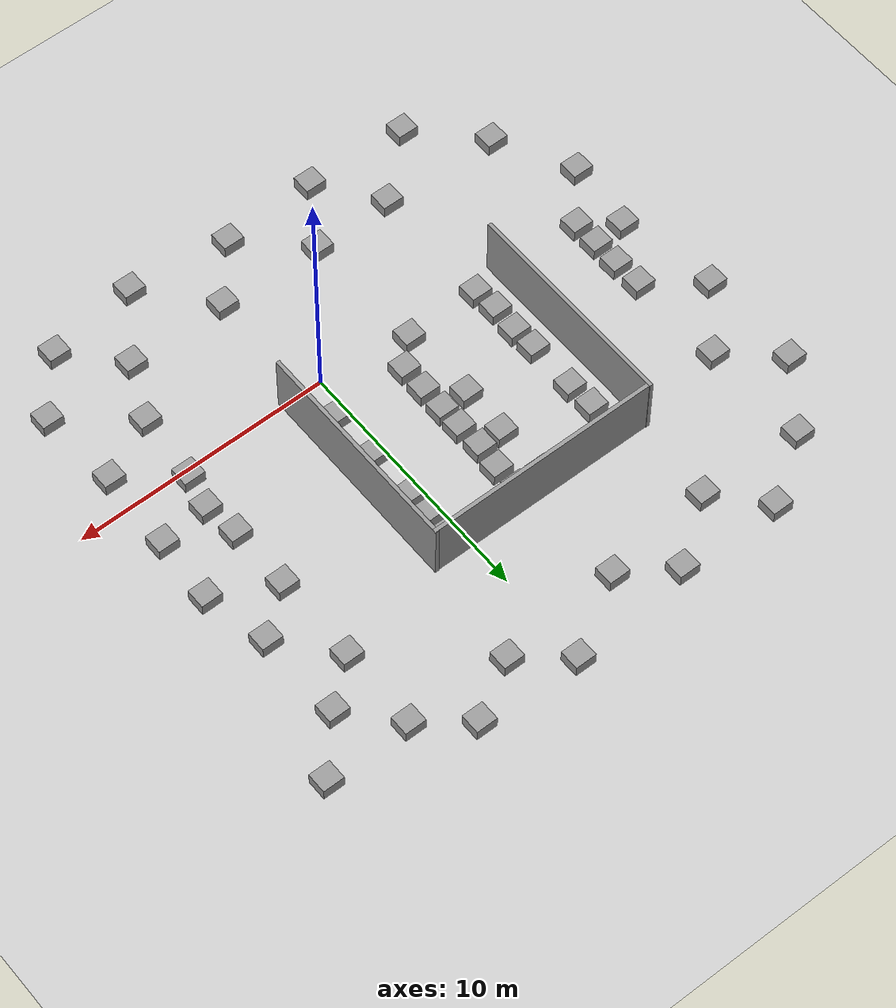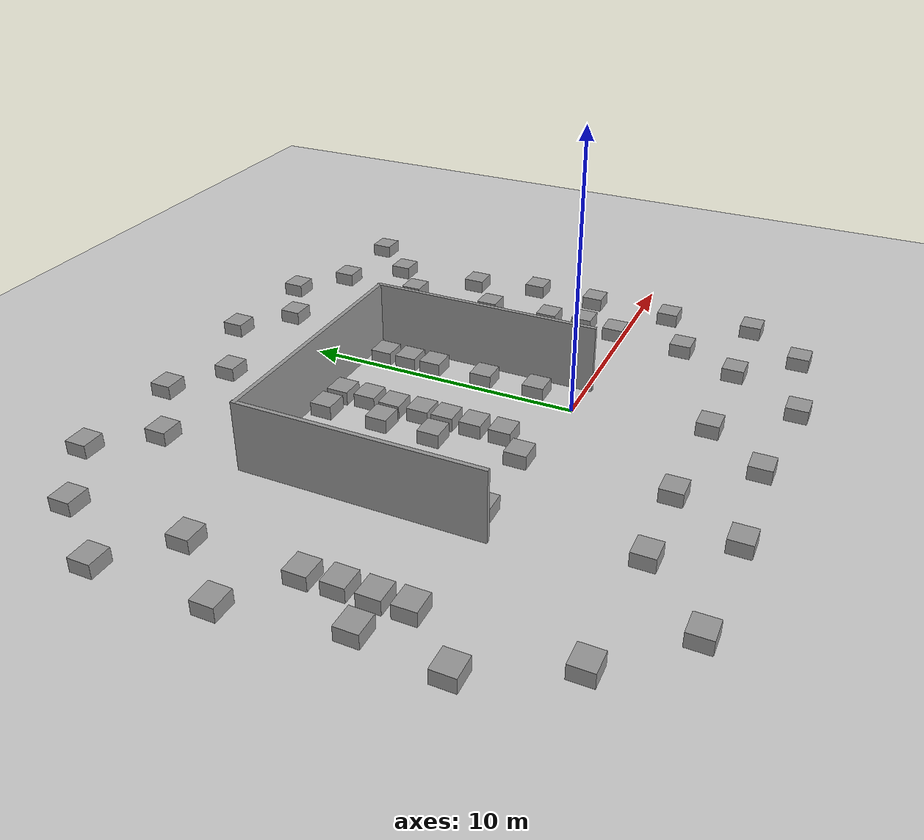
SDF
<sdf version="1.7">
 <world name="default">
  <light name="sun" type="directional">
   <pose>0 0 10 0 -0 0</pose>
   <diffuse>0.8 0.8 0.8 1</diffuse>
   <specular>0.2 0.2 0.2 1</specular>
   <attenuation>
    <range>1000</range>
    <constant>0.9</constant>
    <linear>0.01</linear>
    <quadratic>0.001</quadratic>
   </attenuation>
   <direction>-0.5 0.1 -0.9</direction>
   <spot><inner_angle>0</inner_angle><outer_angle>0</outer_angle><falloff>0</falloff></spot>
  </light>
  <model name="ground_plane">
   <static>1</static>
   <link name="link">
    <collision name="collision">
     <geometry><plane><normal>0 0 1</normal><size>100 100</size></plane></geometry>
     <surface>
      <contact><collide_bitmask>65535</collide_bitmask></contact>
      <friction><ode><mu>100</mu><mu2>50</mu2></ode></friction>
     </surface>
    </collision>
    <visual name="visual">
     <cast_shadows>0</cast_shadows>
     <geometry><plane><normal>0 0 1</normal><size>100 100</size></plane></geometry>
     <material>
      <script><uri>file://media/materials/scripts/gazebo.material</uri><name>Gazebo/Grey</name></script>
     </material>
    </visual>
   </link>
  </model>
  <gravity>0 0 -9.8</gravity>
  <magnetic_field>6e-06 2.3e-05 -4.2e-05</magnetic_field>
  <atmosphere type="adiabatic"/>
  <physics name="default_physics" default="0" type="ode">
   <max_step_size>0.001</max_step_size>
   <real_time_factor>1</real_time_factor>
   <real_time_update_rate>1000</real_time_update_rate>
  </physics>
  <scene><ambient>0.4 0.4 0.4 1</ambient><background>0.7 0.7 0.7 1</background><shadows>1</shadows></scene>
  <audio><device>default</device></audio>
  <spherical_coordinates>
   <surface_model>EARTH_WGS84</surface_model>
   <latitude_deg>0</latitude_deg>
   <longitude_deg>0</longitude_deg>
   <elevation>0</elevation>
   <heading_deg>0</heading_deg>
  </spherical_coordinates>
  <model name="unit_box_clone">
   <pose>0.5497 1.49077 0.249258 0 -0 1e-06</pose>
   <link name="link">
    <inertial>
     <mass>1</mass>
     <inertia>
      <ixx>0.166667</ixx>
      <ixy>0</ixy>
      <ixz>0</ixz>
      <iyy>0.166667</iyy>
      <iyz>0</iyz>
      <izz>0.166667</izz>
     </inertia>
    </inertial>
    <collision name="collision">
     <geometry><box><size>0.832462 0.776172 0.498517</size></box></geometry>
    </collision>
    <visual name="visual">
     <geometry><box><size>0.832462 0.776172 0.498517</size></box></geometry>
     <material>
      <script><name>Gazebo/Grey</name><uri>file://media/materials/scripts/gazebo.material</uri></script>
     </material>
    </visual>
   </link>
  </model>
  <model name="unit_box_clone_0">
   <pose>0.542038 3.47351 0.249258 0 -0 1e-06</pose>
   <link name="link">
    <inertial>
     <mass>1</mass>
     <inertia>
      <ixx>0.166667</ixx>
      <ixy>0</ixy>
      <ixz>0</ixz>
      <iyy>0.166667</iyy>
      <iyz>0</iyz>
      <izz>0.166667</izz>
     </inertia>
    </inertial>
    <collision name="collision">
     <geometry><box><size>0.832462 0.776172 0.498517</size></box></geometry>
    </collision>
    <visual name="visual">
     <geometry><box><size>0.832462 0.776172 0.498517</size></box></geometry>
     <material>
      <script><name>Gazebo/Grey</name><uri>file://media/materials/scripts/gazebo.material</uri></script>
     </material>
    </visual>
   </link>
  </model>
  <model name="unit_box_clone_1">
   <pose>0.55967 5.47509 0.249258 0 -0 1e-06</pose>
   <link name="link">
    <inertial>
     <mass>1</mass>
     <inertia>
      <ixx>0.166667</ixx>
      <ixy>0</ixy>
      <ixz>0</ixz>
      <iyy>0.166667</iyy>
      <iyz>0</iyz>
      <izz>0.166667</izz>
     </inertia>
    </inertial>
    <collision name="collision">
     <geometry><box><size>0.832462 0.776172 0.498517</size></box></geometry>
    </collision>
    <visual name="visual">
     <geometry><box><size>0.832462 0.776172 0.498517</size></box></geometry>
     <material>
      <script><name>Gazebo/Grey</name><uri>file://media/materials/scripts/gazebo.material</uri></script>
     </material>
    </visual>
   </link>
  </model>
  <model name="unit_box_clone_2">
   <pose>0.545616 7.45285 0.249258 0 -0 1e-06</pose>
   <link name="link">
    <inertial>
     <mass>1</mass>
     <inertia>
      <ixx>0.166667</ixx>
      <ixy>0</ixy>
      <ixz>0</ixz>
      <iyy>0.166667</iyy>
      <iyz>0</iyz>
      <izz>0.166667</izz>
     </inertia>
    </inertial>
    <collision name="collision">
     <geometry><box><size>0.832462 0.776172 0.498517</size></box></geometry>
    </collision>
    <visual name="visual">
     <geometry><box><size>0.832462 0.776172 0.498517</size></box></geometry>
     <material>
      <script><name>Gazebo/Grey</name><uri>file://media/materials/scripts/gazebo.material</uri></script>
     </material>
    </visual>
   </link>
  </model>
  <model name="unit_box_clone_3">
   <pose>0.543198 6.45342 0.249258 0 -0 1e-06</pose>
   <link name="link">
    <inertial>
     <mass>1</mass>
     <inertia>
      <ixx>0.166667</ixx>
      <ixy>0</ixy>
      <ixz>0</ixz>
      <iyy>0.166667</iyy>
      <iyz>0</iyz>
      <izz>0.166667</izz>
     </inertia>
    </inertial>
    <collision name="collision">
     <geometry><box><size>0.832462 0.776172 0.498517</size></box></geometry>
    </collision>
    <visual name="visual">
     <geometry><box><size>0.832462 0.776172 0.498517</size></box></geometry>
     <material>
      <script><name>Gazebo/Grey</name><uri>file://media/materials/scripts/gazebo.material</uri></script>
     </material>
    </visual>
   </link>
  </model>
  <model name="unit_box_clone_4">
   <pose>-2.47532 7.50096 0.249258 0 -0 1e-06</pose>
   <link name="link">
    <inertial>
     <mass>1</mass>
     <inertia>
      <ixx>0.166667</ixx>
      <ixy>0</ixy>
      <ixz>0</ixz>
      <iyy>0.166667</iyy>
      <iyz>0</iyz>
      <izz>0.166667</izz>
     </inertia>
    </inertial>
    <collision name="collision">
     <geometry><box><size>0.832462 0.776172 0.498517</size></box></geometry>
    </collision>
    <visual name="visual">
     <geometry><box><size>0.832462 0.776172 0.498517</size></box></geometry>
     <material>
      <script><name>Gazebo/Grey</name><uri>file://media/materials/scripts/gazebo.material</uri></script>
     </material>
    </visual>
   </link>
  </model>
  <model name="unit_box_clone_5">
   <pose>-2.52887 5.46662 0.249258 0 -0 1e-06</pose>
   <link name="link">
    <inertial>
     <mass>1</mass>
     <inertia>
      <ixx>0.166667</ixx>
      <ixy>0</ixy>
      <ixz>0</ixz>
      <iyy>0.166667</iyy>
      <iyz>0</iyz>
      <izz>0.166667</izz>
     </inertia>
    </inertial>
    <collision name="collision">
     <geometry><box><size>0.832462 0.776172 0.498517</size></box></geometry>
    </collision>
    <visual name="visual">
     <geometry><box><size>0.832462 0.776172 0.498517</size></box></geometry>
     <material>
      <script><name>Gazebo/Grey</name><uri>file://media/materials/scripts/gazebo.material</uri></script>
     </material>
    </visual>
   </link>
  </model>
  <model name="unit_box_clone_6">
   <pose>-2.4761 4.43201 0.249258 0 -0 1e-06</pose>
   <link name="link">
    <inertial>
     <mass>1</mass>
     <inertia>
      <ixx>0.166667</ixx>
      <ixy>0</ixy>
      <ixz>0</ixz>
      <iyy>0.166667</iyy>
      <iyz>0</iyz>
      <izz>0.166667</izz>
     </inertia>
    </inertial>
    <collision name="collision">
     <geometry><box><size>0.832462 0.776172 0.498517</size></box></geometry>
    </collision>
    <visual name="visual">
     <geometry><box><size>0.832462 0.776172 0.498517</size></box></geometry>
     <material>
      <script><name>Gazebo/Grey</name><uri>file://media/materials/scripts/gazebo.material</uri></script>
     </material>
    </visual>
   </link>
  </model>
  <model name="unit_box_clone_7">
   <pose>-2.47412 3.51977 0.249258 0 -0 1e-06</pose>
   <link name="link">
    <inertial>
     <mass>1</mass>
     <inertia>
      <ixx>0.166667</ixx>
      <ixy>0</ixy>
      <ixz>0</ixz>
      <iyy>0.166667</iyy>
      <iyz>0</iyz>
      <izz>0.166667</izz>
     </inertia>
    </inertial>
    <collision name="collision">
     <geometry><box><size>0.832462 0.776172 0.498517</size></box></geometry>
    </collision>
    <visual name="visual">
     <geometry><box><size>0.832462 0.776172 0.498517</size></box></geometry>
     <material>
      <script><name>Gazebo/Grey</name><uri>file://media/materials/scripts/gazebo.material</uri></script>
     </material>
    </visual>
   </link>
  </model>
  <model name="unit_box_clone_8">
   <pose>-2.50304 1.43642 0.249258 0 -0 1e-06</pose>
   <link name="link">
    <inertial>
     <mass>1</mass>
     <inertia>
      <ixx>0.166667</ixx>
      <ixy>0</ixy>
      <ixz>0</ixz>
      <iyy>0.166667</iyy>
      <iyz>0</iyz>
      <izz>0.166667</izz>
     </inertia>
    </inertial>
    <collision name="collision">
     <geometry><box><size>0.832462 0.776172 0.498517</size></box></geometry>
    </collision>
    <visual name="visual">
     <geometry><box><size>0.832462 0.776172 0.498517</size></box></geometry>
     <material>
      <script><name>Gazebo/Grey</name><uri>file://media/materials/scripts/gazebo.material</uri></script>
     </material>
    </visual>
   </link>
  </model>
  <model name="unit_box_clone_9">
   <pose>-2.48784 2.49434 0.249258 0 -0 1e-06</pose>
   <link name="link">
    <inertial>
     <mass>1</mass>
     <inertia>
      <ixx>0.166667</ixx>
      <ixy>0</ixy>
      <ixz>0</ixz>
      <iyy>0.166667</iyy>
      <iyz>0</iyz>
      <izz>0.166667</izz>
     </inertia>
    </inertial>
    <collision name="collision">
     <geometry><box><size>0.832462 0.776172 0.498517</size></box></geometry>
    </collision>
    <visual name="visual">
     <geometry><box><size>0.832462 0.776172 0.498517</size></box></geometry>
     <material>
      <script><name>Gazebo/Grey</name><uri>file://media/materials/scripts/gazebo.material</uri></script>
     </material>
    </visual>
   </link>
  </model>
  <model name="unit_box_clone_10">
   <pose>-3.45923 0.496209 0.249258 0 -0 1e-06</pose>
   <link name="link">
    <inertial>
     <mass>1</mass>
     <inertia>
      <ixx>0.166667</ixx>
      <ixy>0</ixy>
      <ixz>0</ixz>
      <iyy>0.166667</iyy>
      <iyz>0</iyz>
      <izz>0.166667</izz>
     </inertia>
    </inertial>
    <collision name="collision">
     <geometry><box><size>0.832462 0.776172 0.498517</size></box></geometry>
    </collision>
    <visual name="visual">
     <geometry><box><size>0.832462 0.776172 0.498517</size></box></geometry>
     <material>
      <script><name>Gazebo/Grey</name><uri>file://media/materials/scripts/gazebo.material</uri></script>
     </material>
    </visual>
   </link>
  </model>
  <model name="unit_box_clone_11">
   <pose>-6.40158 0.469192 0.249258 0 -0 1e-06</pose>
   <link name="link">
    <inertial>
     <mass>1</mass>
     <inertia>
      <ixx>0.166667</ixx>
      <ixy>0</ixy>
      <ixz>0</ixz>
      <iyy>0.166667</iyy>
      <iyz>0</iyz>
      <izz>0.166667</izz>
     </inertia>
    </inertial>
    <collision name="collision">
     <geometry><box><size>0.832462 0.776172 0.498517</size></box></geometry>
    </collision>
    <visual name="visual">
     <geometry><box><size>0.832462 0.776172 0.498517</size></box></geometry>
     <material>
      <script><name>Gazebo/Grey</name><uri>file://media/materials/scripts/gazebo.material</uri></script>
     </material>
    </visual>
   </link>
  </model>
  <model name="unit_box_clone_12">
   <pose>-6.48918 1.4437 0.249258 0 -0 1e-06</pose>
   <link name="link">
    <inertial>
     <mass>1</mass>
     <inertia>
      <ixx>0.166667</ixx>
      <ixy>0</ixy>
      <ixz>0</ixz>
      <iyy>0.166667</iyy>
      <iyz>0</iyz>
      <izz>0.166667</izz>
     </inertia>
    </inertial>
    <collision name="collision">
     <geometry><box><size>0.832462 0.776172 0.498517</size></box></geometry>
    </collision>
    <visual name="visual">
     <geometry><box><size>0.832462 0.776172 0.498517</size></box></geometry>
     <material>
      <script><name>Gazebo/Grey</name><uri>file://media/materials/scripts/gazebo.material</uri></script>
     </material>
    </visual>
   </link>
  </model>
  <model name="unit_box_clone_13">
   <pose>-6.43074 2.53456 0.249258 0 -0 1e-06</pose>
   <link name="link">
    <inertial>
     <mass>1</mass>
     <inertia>
      <ixx>0.166667</ixx>
      <ixy>0</ixy>
      <ixz>0</ixz>
      <iyy>0.166667</iyy>
      <iyz>0</iyz>
      <izz>0.166667</izz>
     </inertia>
    </inertial>
    <collision name="collision">
     <geometry><box><size>0.832462 0.776172 0.498517</size></box></geometry>
    </collision>
    <visual name="visual">
     <geometry><box><size>0.832462 0.776172 0.498517</size></box></geometry>
     <material>
      <script><name>Gazebo/Grey</name><uri>file://media/materials/scripts/gazebo.material</uri></script>
     </material>
    </visual>
   </link>
  </model>
  <model name="unit_box_clone_14">
   <pose>-6.48652 3.48844 0.249258 0 -0 1e-06</pose>
   <link name="link">
    <inertial>
     <mass>1</mass>
     <inertia>
      <ixx>0.166667</ixx>
      <ixy>0</ixy>
      <ixz>0</ixz>
      <iyy>0.166667</iyy>
      <iyz>0</iyz>
      <izz>0.166667</izz>
     </inertia>
    </inertial>
    <collision name="collision">
     <geometry><box><size>0.832462 0.776172 0.498517</size></box></geometry>
    </collision>
    <visual name="visual">
     <geometry><box><size>0.832462 0.776172 0.498517</size></box></geometry>
     <material>
      <script><name>Gazebo/Grey</name><uri>file://media/materials/scripts/gazebo.material</uri></script>
     </material>
    </visual>
   </link>
  </model>
  <model name="unit_box_clone_15">
   <pose>-6.45405 5.48233 0.249258 0 -0 1e-06</pose>
   <link name="link">
    <inertial>
     <mass>1</mass>
     <inertia>
      <ixx>0.166667</ixx>
      <ixy>0</ixy>
      <ixz>0</ixz>
      <iyy>0.166667</iyy>
      <iyz>0</iyz>
      <izz>0.166667</izz>
     </inertia>
    </inertial>
    <collision name="collision">
     <geometry><box><size>0.832462 0.776172 0.498517</size></box></geometry>
    </collision>
    <visual name="visual">
     <geometry><box><size>0.832462 0.776172 0.498517</size></box></geometry>
     <material>
      <script><name>Gazebo/Grey</name><uri>file://media/materials/scripts/gazebo.material</uri></script>
     </material>
    </visual>
   </link>
  </model>
  <model name="unit_box_clone_16">
   <pose>-6.50367 6.55587 0.249258 0 -0 1e-06</pose>
   <link name="link">
    <inertial>
     <mass>1</mass>
     <inertia>
      <ixx>0.166667</ixx>
      <ixy>0</ixy>
      <ixz>0</ixz>
      <iyy>0.166667</iyy>
      <iyz>0</iyz>
      <izz>0.166667</izz>
     </inertia>
    </inertial>
    <collision name="collision">
     <geometry><box><size>0.832462 0.776172 0.498517</size></box></geometry>
    </collision>
    <visual name="visual">
     <geometry><box><size>0.832462 0.776172 0.498517</size></box></geometry>
     <material>
      <script><name>Gazebo/Grey</name><uri>file://media/materials/scripts/gazebo.material</uri></script>
     </material>
    </visual>
   </link>
  </model>
  <model name="unit_box_clone_17">
   <pose>-6.48562 7.5467 0.249258 0 -0 1e-06</pose>
   <link name="link">
    <inertial>
     <mass>1</mass>
     <inertia>
      <ixx>0.166667</ixx>
      <ixy>0</ixy>
      <ixz>0</ixz>
      <iyy>0.166667</iyy>
      <iyz>0</iyz>
      <izz>0.166667</izz>
     </inertia>
    </inertial>
    <collision name="collision">
     <geometry><box><size>0.832462 0.776172 0.498517</size></box></geometry>
    </collision>
    <visual name="visual">
     <geometry><box><size>0.832462 0.776172 0.498517</size></box></geometry>
     <material>
      <script><name>Gazebo/Grey</name><uri>file://media/materials/scripts/gazebo.material</uri></script>
     </material>
    </visual>
   </link>
  </model>
  <model name="unit_box_clone_19">
   <pose>-2.42105 6.48001 0.249258 0 -0 1e-06</pose>
   <link name="link">
    <inertial>
     <mass>1</mass>
     <inertia>
      <ixx>0.166667</ixx>
      <ixy>0</ixy>
      <ixz>0</ixz>
      <iyy>0.166667</iyy>
      <iyz>0</iyz>
      <izz>0.166667</izz>
     </inertia>
    </inertial>
    <collision name="collision">
     <geometry><box><size>0.832462 0.776172 0.498517</size></box></geometry>
    </collision>
    <visual name="visual">
     <geometry><box><size>0.832462 0.776172 0.498517</size></box></geometry>
     <material>
      <script><name>Gazebo/Grey</name><uri>file://media/materials/scripts/gazebo.material</uri></script>
     </material>
    </visual>
   </link>
  </model>
  <model name="unit_box_clone_20">
   <pose>-3.53767 3.50066 0.249258 0 -0 1e-06</pose>
   <link name="link">
    <inertial>
     <mass>1</mass>
     <inertia>
      <ixx>0.166667</ixx>
      <ixy>0</ixy>
      <ixz>0</ixz>
      <iyy>0.166667</iyy>
      <iyz>0</iyz>
      <izz>0.166667</izz>
     </inertia>
    </inertial>
    <collision name="collision">
     <geometry><box><size>0.832462 0.776172 0.498517</size></box></geometry>
    </collision>
    <visual name="visual">
     <geometry><box><size>0.832462 0.776172 0.498517</size></box></geometry>
     <material>
      <script><name>Gazebo/Grey</name><uri>file://media/materials/scripts/gazebo.material</uri></script>
     </material>
    </visual>
   </link>
  </model>
  <model name="unit_box_clone_21">
   <pose>-3.4752 5.44171 0.249258 0 -0 1e-06</pose>
   <link name="link">
    <inertial>
     <mass>1</mass>
     <inertia>
      <ixx>0.166667</ixx>
      <ixy>0</ixy>
      <ixz>0</ixz>
      <iyy>0.166667</iyy>
      <iyz>0</iyz>
      <izz>0.166667</izz>
     </inertia>
    </inertial>
    <collision name="collision">
     <geometry><box><size>0.832462 0.776172 0.498517</size></box></geometry>
    </collision>
    <visual name="visual">
     <geometry><box><size>0.832462 0.776172 0.498517</size></box></geometry>
     <material>
      <script><name>Gazebo/Grey</name><uri>file://media/materials/scripts/gazebo.material</uri></script>
     </material>
    </visual>
   </link>
  </model>
  <model name="unit_box_clone_22">
   <pose>-3.51755 7.5323 0.249258 0 -0 1e-06</pose>
   <link name="link">
    <inertial>
     <mass>1</mass>
     <inertia>
      <ixx>0.166667</ixx>
      <ixy>0</ixy>
      <ixz>0</ixz>
      <iyy>0.166667</iyy>
      <iyz>0</iyz>
      <izz>0.166667</izz>
     </inertia>
    </inertial>
    <collision name="collision">
     <geometry><box><size>0.832462 0.776172 0.498517</size></box></geometry>
    </collision>
    <visual name="visual">
     <geometry><box><size>0.832462 0.776172 0.498517</size></box></geometry>
     <material>
      <script><name>Gazebo/Grey</name><uri>file://media/materials/scripts/gazebo.material</uri></script>
     </material>
    </visual>
   </link>
  </model>
  <model name="building_template_model">
   <pose>-2.98967 4.02339 0 0 -0 0</pose>
   <link name="Wall_0">
    <collision name="Wall_0_Collision">
     <geometry><box><size>8.48924 0.15 2.5</size></box></geometry>
     <pose>0 0 1.25 0 -0 0</pose>
    </collision>
    <visual name="Wall_0_Visual">
     <pose>0 0 1.25 0 -0 0</pose>
     <geometry><box><size>8.48924 0.15 2.5</size></box></geometry>
     <material>
      <script><uri>file://media/materials/scripts/gazebo.material</uri><name>Gazebo/Grey</name></script>
      <ambient>1 1 1 1</ambient>
     </material>
     <meta><layer>0</layer></meta>
    </visual>
    <pose>-4.55 0.007581 0 0 -0 1.5708</pose>
   </link>
   <link name="Wall_1">
    <collision name="Wall_1_Collision">
     <geometry><box><size>9.25 0.15 2.5</size></box></geometry>
     <pose>0 0 1.25 0 -0 0</pose>
    </collision>
    <visual name="Wall_1_Visual">
     <pose>0 0 1.25 0 -0 0</pose>
     <geometry><box><size>9.25 0.15 2.5</size></box></geometry>
     <material>
      <script><uri>file://media/materials/scripts/gazebo.material</uri><name>Gazebo/Grey</name></script>
      <ambient>1 1 1 1</ambient>
     </material>
     <meta><layer>0</layer></meta>
    </visual>
    <pose>0 4.15427 0 0 -0 0</pose>
   </link>
   <link name="Wall_4">
    <collision name="Wall_4_Collision">
     <geometry><box><size>8.5044 0.15 2.5</size></box></geometry>
     <pose>0 0 1.25 0 -0 0</pose>
    </collision>
    <visual name="Wall_4_Visual">
     <pose>0 0 1.25 0 -0 0</pose>
     <geometry><box><size>8.5044 0.15 2.5</size></box></geometry>
     <material>
      <script><uri>file://media/materials/scripts/gazebo.material</uri><name>Gazebo/Grey</name></script>
      <ambient>1 1 1 1</ambient>
     </material>
     <meta><layer>0</layer></meta>
    </visual>
    <pose>4.55 -0 0 0 -0 -1.5708</pose>
   </link>
   <static>1</static>
  </model>
  <model name="unit_box_clone_14_clone">
   <pose>-10.9648 0.44423 0.249258 0 -0 1e-06</pose>
   <link name="link">
    <inertial>
     <mass>1</mass>
     <inertia>
      <ixx>0.166667</ixx>
      <ixy>0</ixy>
      <ixz>0</ixz>
      <iyy>0.166667</iyy>
      <iyz>0</iyz>
      <izz>0.166667</izz>
     </inertia>
    </inertial>
    <collision name="collision">
     <geometry><box><size>0.832462 0.776172 0.498517</size></box></geometry>
    </collision>
    <visual name="visual">
     <geometry><box><size>0.832462 0.776172 0.498517</size></box></geometry>
     <material>
      <script><name>Gazebo/Grey</name><uri>file://media/materials/scripts/gazebo.material</uri></script>
     </material>
    </visual>
   </link>
  </model>
  <model name="unit_box_clone_14_clone_0">
   <pose>-10.9852 1.48414 0.249258 0 -0 1e-06</pose>
   <link name="link">
    <inertial>
     <mass>1</mass>
     <inertia>
      <ixx>0.166667</ixx>
      <ixy>0</ixy>
      <ixz>0</ixz>
      <iyy>0.166667</iyy>
      <iyz>0</iyz>
      <izz>0.166667</izz>
     </inertia>
    </inertial>
    <collision name="collision">
     <geometry><box><size>0.832462 0.776172 0.498517</size></box></geometry>
    </collision>
    <visual name="visual">
     <geometry><box><size>0.832462 0.776172 0.498517</size></box></geometry>
     <material>
      <script><name>Gazebo/Grey</name><uri>file://media/materials/scripts/gazebo.material</uri></script>
     </material>
    </visual>
   </link>
  </model>
  <model name="unit_box_clone_14_clone_1">
   <pose>-10.9755 2.56515 0.249258 0 -0 1e-06</pose>
   <link name="link">
    <inertial>
     <mass>1</mass>
     <inertia>
      <ixx>0.166667</ixx>
      <ixy>0</ixy>
      <ixz>0</ixz>
      <iyy>0.166667</iyy>
      <iyz>0</iyz>
      <izz>0.166667</izz>
     </inertia>
    </inertial>
    <collision name="collision">
     <geometry><box><size>0.832462 0.776172 0.498517</size></box></geometry>
    </collision>
    <visual name="visual">
     <geometry><box><size>0.832462 0.776172 0.498517</size></box></geometry>
     <material>
      <script><name>Gazebo/Grey</name><uri>file://media/materials/scripts/gazebo.material</uri></script>
     </material>
    </visual>
   </link>
  </model>
  <model name="unit_box_clone_14_clone_2">
   <pose>-11.0269 3.70651 0.249258 0 -0 1e-06</pose>
   <link name="link">
    <inertial>
     <mass>1</mass>
     <inertia>
      <ixx>0.166667</ixx>
      <ixy>0</ixy>
      <ixz>0</ixz>
      <iyy>0.166667</iyy>
      <iyz>0</iyz>
      <izz>0.166667</izz>
     </inertia>
    </inertial>
    <collision name="collision">
     <geometry><box><size>0.832462 0.776172 0.498517</size></box></geometry>
    </collision>
    <visual name="visual">
     <geometry><box><size>0.832462 0.776172 0.498517</size></box></geometry>
     <material>
      <script><name>Gazebo/Grey</name><uri>file://media/materials/scripts/gazebo.material</uri></script>
     </material>
    </visual>
   </link>
  </model>
  <model name="unit_box_clone_14_clone_3">
   <pose>-11.0104 -4.32152 0.249258 0 -0 1e-06</pose>
   <link name="link">
    <inertial>
     <mass>1</mass>
     <inertia>
      <ixx>0.166667</ixx>
      <ixy>0</ixy>
      <ixz>0</ixz>
      <iyy>0.166667</iyy>
      <iyz>0</iyz>
      <izz>0.166667</izz>
     </inertia>
    </inertial>
    <collision name="collision">
     <geometry><box><size>0.832462 0.776172 0.498517</size></box></geometry>
    </collision>
    <visual name="visual">
     <geometry><box><size>0.832462 0.776172 0.498517</size></box></geometry>
     <material>
      <script><name>Gazebo/Grey</name><uri>file://media/materials/scripts/gazebo.material</uri></script>
     </material>
    </visual>
   </link>
  </model>
  <model name="unit_box_clone_14_clone_4">
   <pose>-6.44523 -4.50506 0.249258 0 -0 1e-06</pose>
   <link name="link">
    <inertial>
     <mass>1</mass>
     <inertia>
      <ixx>0.166667</ixx>
      <ixy>0</ixy>
      <ixz>0</ixz>
      <iyy>0.166667</iyy>
      <iyz>0</iyz>
      <izz>0.166667</izz>
     </inertia>
    </inertial>
    <collision name="collision">
     <geometry><box><size>0.832462 0.776172 0.498517</size></box></geometry>
    </collision>
    <visual name="visual">
     <geometry><box><size>0.832462 0.776172 0.498517</size></box></geometry>
     <material>
      <script><name>Gazebo/Grey</name><uri>file://media/materials/scripts/gazebo.material</uri></script>
     </material>
    </visual>
   </link>
  </model>
  <model name="unit_box_clone_14_clone_5">
   <pose>-3.30521 -4.44072 0.249258 0 -0 1e-06</pose>
   <link name="link">
    <inertial>
     <mass>1</mass>
     <inertia>
      <ixx>0.166667</ixx>
      <ixy>0</ixy>
      <ixz>0</ixz>
      <iyy>0.166667</iyy>
      <iyz>0</iyz>
      <izz>0.166667</izz>
     </inertia>
    </inertial>
    <collision name="collision">
     <geometry><box><size>0.832462 0.776172 0.498517</size></box></geometry>
    </collision>
    <visual name="visual">
     <geometry><box><size>0.832462 0.776172 0.498517</size></box></geometry>
     <material>
      <script><name>Gazebo/Grey</name><uri>file://media/materials/scripts/gazebo.material</uri></script>
     </material>
    </visual>
   </link>
  </model>
  <model name="unit_box_clone_14_clone_6">
   <pose>0.710551 -4.57532 0.249258 0 -0 1e-06</pose>
   <link name="link">
    <inertial>
     <mass>1</mass>
     <inertia>
      <ixx>0.166667</ixx>
      <ixy>0</ixy>
      <ixz>0</ixz>
      <iyy>0.166667</iyy>
      <iyz>0</iyz>
      <izz>0.166667</izz>
     </inertia>
    </inertial>
    <collision name="collision">
     <geometry><box><size>0.832462 0.776172 0.498517</size></box></geometry>
    </collision>
    <visual name="visual">
     <geometry><box><size>0.832462 0.776172 0.498517</size></box></geometry>
     <material>
      <script><name>Gazebo/Grey</name><uri>file://media/materials/scripts/gazebo.material</uri></script>
     </material>
    </visual>
   </link>
  </model>
  <model name="unit_box_clone_14_clone_7">
   <pose>4.60747 -4.55588 0.249258 0 -0 1e-06</pose>
   <link name="link">
    <inertial>
     <mass>1</mass>
     <inertia>
      <ixx>0.166667</ixx>
      <ixy>0</ixy>
      <ixz>0</ixz>
      <iyy>0.166667</iyy>
      <iyz>0</iyz>
      <izz>0.166667</izz>
     </inertia>
    </inertial>
    <collision name="collision">
     <geometry><box><size>0.832462 0.776172 0.498517</size></box></geometry>
    </collision>
    <visual name="visual">
     <geometry><box><size>0.832462 0.776172 0.498517</size></box></geometry>
     <material>
      <script><name>Gazebo/Grey</name><uri>file://media/materials/scripts/gazebo.material</uri></script>
     </material>
    </visual>
   </link>
  </model>
  <model name="unit_box_clone_14_clone_8">
   <pose>-11.1195 7.49918 0.249258 0 -0 1e-06</pose>
   <link name="link">
    <inertial>
     <mass>1</mass>
     <inertia>
      <ixx>0.166667</ixx>
      <ixy>0</ixy>
      <ixz>0</ixz>
      <iyy>0.166667</iyy>
      <iyz>0</iyz>
      <izz>0.166667</izz>
     </inertia>
    </inertial>
    <collision name="collision">
     <geometry><box><size>0.832462 0.776172 0.498517</size></box></geometry>
    </collision>
    <visual name="visual">
     <geometry><box><size>0.832462 0.776172 0.498517</size></box></geometry>
     <material>
      <script><name>Gazebo/Grey</name><uri>file://media/materials/scripts/gazebo.material</uri></script>
     </material>
    </visual>
   </link>
  </model>
  <model name="unit_box_clone_14_clone_9">
   <pose>-11.2206 11.7015 0.249258 0 -0 1e-06</pose>
   <link name="link">
    <inertial>
     <mass>1</mass>
     <inertia>
      <ixx>0.166667</ixx>
      <ixy>0</ixy>
      <ixz>0</ixz>
      <iyy>0.166667</iyy>
      <iyz>0</iyz>
      <izz>0.166667</izz>
     </inertia>
    </inertial>
    <collision name="collision">
     <geometry><box><size>0.832462 0.776172 0.498517</size></box></geometry>
    </collision>
    <visual name="visual">
     <geometry><box><size>0.832462 0.776172 0.498517</size></box></geometry>
     <material>
      <script><name>Gazebo/Grey</name><uri>file://media/materials/scripts/gazebo.material</uri></script>
     </material>
    </visual>
   </link>
  </model>
  <model name="unit_box_clone_14_clone_10">
   <pose>-7.12543 11.5506 0.249258 0 -0 1e-06</pose>
   <link name="link">
    <inertial>
     <mass>1</mass>
     <inertia>
      <ixx>0.166667</ixx>
      <ixy>0</ixy>
      <ixz>0</ixz>
      <iyy>0.166667</iyy>
      <iyz>0</iyz>
      <izz>0.166667</izz>
     </inertia>
    </inertial>
    <collision name="collision">
     <geometry><box><size>0.832462 0.776172 0.498517</size></box></geometry>
    </collision>
    <visual name="visual">
     <geometry><box><size>0.832462 0.776172 0.498517</size></box></geometry>
     <material>
      <script><name>Gazebo/Grey</name><uri>file://media/materials/scripts/gazebo.material</uri></script>
     </material>
    </visual>
   </link>
  </model>
  <model name="unit_box_clone_14_clone_11">
   <pose>-2.80296 12.0082 0.249258 0 -0 1e-06</pose>
   <link name="link">
    <inertial>
     <mass>1</mass>
     <inertia>
      <ixx>0.166667</ixx>
      <ixy>0</ixy>
      <ixz>0</ixz>
      <iyy>0.166667</iyy>
      <iyz>0</iyz>
      <izz>0.166667</izz>
     </inertia>
    </inertial>
    <collision name="collision">
     <geometry><box><size>0.832462 0.776172 0.498517</size></box></geometry>
    </collision>
    <visual name="visual">
     <geometry><box><size>0.832462 0.776172 0.498517</size></box></geometry>
     <material>
      <script><name>Gazebo/Grey</name><uri>file://media/materials/scripts/gazebo.material</uri></script>
     </material>
    </visual>
   </link>
  </model>
  <model name="unit_box_clone_14_clone_12">
   <pose>1.90466 12.3031 0.249258 0 -0 1e-06</pose>
   <link name="link">
    <inertial>
     <mass>1</mass>
     <inertia>
      <ixx>0.166667</ixx>
      <ixy>0</ixy>
      <ixz>0</ixz>
      <iyy>0.166667</iyy>
      <iyz>0</iyz>
      <izz>0.166667</izz>
     </inertia>
    </inertial>
    <collision name="collision">
     <geometry><box><size>0.832462 0.776172 0.498517</size></box></geometry>
    </collision>
    <visual name="visual">
     <geometry><box><size>0.832462 0.776172 0.498517</size></box></geometry>
     <material>
      <script><name>Gazebo/Grey</name><uri>file://media/materials/scripts/gazebo.material</uri></script>
     </material>
    </visual>
   </link>
  </model>
  <model name="unit_box_clone_14_clone_13">
   <pose>5.86262 12.1713 0.249258 0 -0 1e-06</pose>
   <link name="link">
    <inertial>
     <mass>1</mass>
     <inertia>
      <ixx>0.166667</ixx>
      <ixy>0</ixy>
      <ixz>0</ixz>
      <iyy>0.166667</iyy>
      <iyz>0</iyz>
      <izz>0.166667</izz>
     </inertia>
    </inertial>
    <collision name="collision">
     <geometry><box><size>0.832462 0.776172 0.498517</size></box></geometry>
    </collision>
    <visual name="visual">
     <geometry><box><size>0.832462 0.776172 0.498517</size></box></geometry>
     <material>
      <script><name>Gazebo/Grey</name><uri>file://media/materials/scripts/gazebo.material</uri></script>
     </material>
    </visual>
   </link>
  </model>
  <model name="unit_box_clone_14_clone_14">
   <pose>9.15848 12.1584 0.249258 0 -0 1e-06</pose>
   <link name="link">
    <inertial>
     <mass>1</mass>
     <inertia>
      <ixx>0.166667</ixx>
      <ixy>0</ixy>
      <ixz>0</ixz>
      <iyy>0.166667</iyy>
      <iyz>0</iyz>
      <izz>0.166667</izz>
     </inertia>
    </inertial>
    <collision name="collision">
     <geometry><box><size>0.832462 0.776172 0.498517</size></box></geometry>
    </collision>
    <visual name="visual">
     <geometry><box><size>0.832462 0.776172 0.498517</size></box></geometry>
     <material>
      <script><name>Gazebo/Grey</name><uri>file://media/materials/scripts/gazebo.material</uri></script>
     </material>
    </visual>
   </link>
  </model>
  <model name="unit_box_clone_14_clone_15">
   <pose>5.85152 8.96993 0.249258 0 -0 1e-06</pose>
   <link name="link">
    <inertial>
     <mass>1</mass>
     <inertia>
      <ixx>0.166667</ixx>
      <ixy>0</ixy>
      <ixz>0</ixz>
      <iyy>0.166667</iyy>
      <iyz>0</iyz>
      <izz>0.166667</izz>
     </inertia>
    </inertial>
    <collision name="collision">
     <geometry><box><size>0.832462 0.776172 0.498517</size></box></geometry>
    </collision>
    <visual name="visual">
     <geometry><box><size>0.832462 0.776172 0.498517</size></box></geometry>
     <material>
      <script><name>Gazebo/Grey</name><uri>file://media/materials/scripts/gazebo.material</uri></script>
     </material>
    </visual>
   </link>
  </model>
  <model name="unit_box_clone_14_clone_16">
   <pose>5.86617 5.55867 0.249258 0 -0 1e-06</pose>
   <link name="link">
    <inertial>
     <mass>1</mass>
     <inertia>
      <ixx>0.166667</ixx>
      <ixy>0</ixy>
      <ixz>0</ixz>
      <iyy>0.166667</iyy>
      <iyz>0</iyz>
      <izz>0.166667</izz>
     </inertia>
    </inertial>
    <collision name="collision">
     <geometry><box><size>0.832462 0.776172 0.498517</size></box></geometry>
    </collision>
    <visual name="visual">
     <geometry><box><size>0.832462 0.776172 0.498517</size></box></geometry>
     <material>
      <script><name>Gazebo/Grey</name><uri>file://media/materials/scripts/gazebo.material</uri></script>
     </material>
    </visual>
   </link>
  </model>
  <model name="unit_box_clone_14_clone_17">
   <pose>5.88572 3.04043 0.249258 0 -0 1e-06</pose>
   <link name="link">
    <inertial>
     <mass>1</mass>
     <inertia>
      <ixx>0.166667</ixx>
      <ixy>0</ixy>
      <ixz>0</ixz>
      <iyy>0.166667</iyy>
      <iyz>0</iyz>
      <izz>0.166667</izz>
     </inertia>
    </inertial>
    <collision name="collision">
     <geometry><box><size>0.832462 0.776172 0.498517</size></box></geometry>
    </collision>
    <visual name="visual">
     <geometry><box><size>0.832462 0.776172 0.498517</size></box></geometry>
     <material>
      <script><name>Gazebo/Grey</name><uri>file://media/materials/scripts/gazebo.material</uri></script>
     </material>
    </visual>
   </link>
  </model>
  <model name="unit_box_clone_14_clone_18">
   <pose>5.78088 0.290014 0.249258 0 -0 1e-06</pose>
   <link name="link">
    <inertial>
     <mass>1</mass>
     <inertia>
      <ixx>0.166667</ixx>
      <ixy>0</ixy>
      <ixz>0</ixz>
      <iyy>0.166667</iyy>
      <iyz>0</iyz>
      <izz>0.166667</izz>
     </inertia>
    </inertial>
    <collision name="collision">
     <geometry><box><size>0.832462 0.776172 0.498517</size></box></geometry>
    </collision>
    <visual name="visual">
     <geometry><box><size>0.832462 0.776172 0.498517</size></box></geometry>
     <material>
      <script><name>Gazebo/Grey</name><uri>file://media/materials/scripts/gazebo.material</uri></script>
     </material>
    </visual>
   </link>
  </model>
  <model name="unit_box_clone_14_clone_19">
   <pose>5.59902 -2.39159 0.249258 0 -0 1e-06</pose>
   <link name="link">
    <inertial>
     <mass>1</mass>
     <inertia>
      <ixx>0.166667</ixx>
      <ixy>0</ixy>
      <ixz>0</ixz>
      <iyy>0.166667</iyy>
      <iyz>0</iyz>
      <izz>0.166667</izz>
     </inertia>
    </inertial>
    <collision name="collision">
     <geometry><box><size>0.832462 0.776172 0.498517</size></box></geometry>
    </collision>
    <visual name="visual">
     <geometry><box><size>0.832462 0.776172 0.498517</size></box></geometry>
     <material>
      <script><name>Gazebo/Grey</name><uri>file://media/materials/scripts/gazebo.material</uri></script>
     </material>
    </visual>
   </link>
  </model>
  <model name="unit_box_clone_14_clone_20">
   <pose>8.1707 -4.46252 0.249258 0 -0 1e-06</pose>
   <link name="link">
    <inertial>
     <mass>1</mass>
     <inertia>
      <ixx>0.166667</ixx>
      <ixy>0</ixy>
      <ixz>0</ixz>
      <iyy>0.166667</iyy>
      <iyz>0</iyz>
      <izz>0.166667</izz>
     </inertia>
    </inertial>
    <collision name="collision">
     <geometry><box><size>0.832462 0.776172 0.498517</size></box></geometry>
    </collision>
    <visual name="visual">
     <geometry><box><size>0.832462 0.776172 0.498517</size></box></geometry>
     <material>
      <script><name>Gazebo/Grey</name><uri>file://media/materials/scripts/gazebo.material</uri></script>
     </material>
    </visual>
   </link>
  </model>
  <model name="unit_box_clone_14_clone_21">
   <pose>7.90891 -1.27466 0.249258 0 -0 1e-06</pose>
   <link name="link">
    <inertial>
     <mass>1</mass>
     <inertia>
      <ixx>0.166667</ixx>
      <ixy>0</ixy>
      <ixz>0</ixz>
      <iyy>0.166667</iyy>
      <iyz>0</iyz>
      <izz>0.166667</izz>
     </inertia>
    </inertial>
    <collision name="collision">
     <geometry><box><size>0.832462 0.776172 0.498517</size></box></geometry>
    </collision>
    <visual name="visual">
     <geometry><box><size>0.832462 0.776172 0.498517</size></box></geometry>
     <material>
      <script><name>Gazebo/Grey</name><uri>file://media/materials/scripts/gazebo.material</uri></script>
     </material>
    </visual>
   </link>
  </model>
  <model name="unit_box_clone_14_clone_22">
   <pose>8.00238 1.8527 0.249258 0 -0 1e-06</pose>
   <link name="link">
    <inertial>
     <mass>1</mass>
     <inertia>
      <ixx>0.166667</ixx>
      <ixy>0</ixy>
      <ixz>0</ixz>
      <iyy>0.166667</iyy>
      <iyz>0</iyz>
      <izz>0.166667</izz>
     </inertia>
    </inertial>
    <collision name="collision">
     <geometry><box><size>0.832462 0.776172 0.498517</size></box></geometry>
    </collision>
    <visual name="visual">
     <geometry><box><size>0.832462 0.776172 0.498517</size></box></geometry>
     <material>
      <script><name>Gazebo/Grey</name><uri>file://media/materials/scripts/gazebo.material</uri></script>
     </material>
    </visual>
   </link>
  </model>
  <model name="unit_box_clone_14_clone_23">
   <pose>8.13848 4.39128 0.249258 0 -0 1e-06</pose>
   <link name="link">
    <inertial>
     <mass>1</mass>
     <inertia>
      <ixx>0.166667</ixx>
      <ixy>0</ixy>
      <ixz>0</ixz>
      <iyy>0.166667</iyy>
      <iyz>0</iyz>
      <izz>0.166667</izz>
     </inertia>
    </inertial>
    <collision name="collision">
     <geometry><box><size>0.832462 0.776172 0.498517</size></box></geometry>
    </collision>
    <visual name="visual">
     <geometry><box><size>0.832462 0.776172 0.498517</size></box></geometry>
     <material>
      <script><name>Gazebo/Grey</name><uri>file://media/materials/scripts/gazebo.material</uri></script>
     </material>
    </visual>
   </link>
  </model>
  <model name="unit_box_clone_14_clone_24">
   <pose>6.08226 1.6499 0.249258 0 -0 1e-06</pose>
   <link name="link">
    <inertial>
     <mass>1</mass>
     <inertia>
      <ixx>0.166667</ixx>
      <ixy>0</ixy>
      <ixz>0</ixz>
      <iyy>0.166667</iyy>
      <iyz>0</iyz>
      <izz>0.166667</izz>
     </inertia>
    </inertial>
    <collision name="collision">
     <geometry><box><size>0.832462 0.776172 0.498517</size></box></geometry>
    </collision>
    <visual name="visual">
     <geometry><box><size>0.832462 0.776172 0.498517</size></box></geometry>
     <material>
      <script><name>Gazebo/Grey</name><uri>file://media/materials/scripts/gazebo.material</uri></script>
     </material>
    </visual>
   </link>
  </model>
  <model name="unit_box_clone_14_clone_25">
   <pose>-12.2598 1.39709 0.249258 0 -0 1e-06</pose>
   <link name="link">
    <inertial>
     <mass>1</mass>
     <inertia>
      <ixx>0.166667</ixx>
      <ixy>0</ixy>
      <ixz>0</ixz>
      <iyy>0.166667</iyy>
      <iyz>0</iyz>
      <izz>0.166667</izz>
     </inertia>
    </inertial>
    <collision name="collision">
     <geometry><box><size>0.832462 0.776172 0.498517</size></box></geometry>
    </collision>
    <visual name="visual">
     <geometry><box><size>0.832462 0.776172 0.498517</size></box></geometry>
     <material>
      <script><name>Gazebo/Grey</name><uri>file://media/materials/scripts/gazebo.material</uri></script>
     </material>
    </visual>
   </link>
  </model>
  <model name="unit_box_clone_14_clone_26">
   <pose>-12.5244 -1.40631 0.249258 0 -0 1e-06</pose>
   <link name="link">
    <inertial>
     <mass>1</mass>
     <inertia>
      <ixx>0.166667</ixx>
      <ixy>0</ixy>
      <ixz>0</ixz>
      <iyy>0.166667</iyy>
      <iyz>0</iyz>
      <izz>0.166667</izz>
     </inertia>
    </inertial>
    <collision name="collision">
     <geometry><box><size>0.832462 0.776172 0.498517</size></box></geometry>
    </collision>
    <visual name="visual">
     <geometry><box><size>0.832462 0.776172 0.498517</size></box></geometry>
     <material>
      <script><name>Gazebo/Grey</name><uri>file://media/materials/scripts/gazebo.material</uri></script>
     </material>
    </visual>
   </link>
  </model>
  <model name="unit_box_clone_14_clone_27">
   <pose>-12.999 5.21767 0.249258 0 -0 1e-06</pose>
   <link name="link">
    <inertial>
     <mass>1</mass>
     <inertia>
      <ixx>0.166667</ixx>
      <ixy>0</ixy>
      <ixz>0</ixz>
      <iyy>0.166667</iyy>
      <iyz>0</iyz>
      <izz>0.166667</izz>
     </inertia>
    </inertial>
    <collision name="collision">
     <geometry><box><size>0.832462 0.776172 0.498517</size></box></geometry>
    </collision>
    <visual name="visual">
     <geometry><box><size>0.832462 0.776172 0.498517</size></box></geometry>
     <material>
      <script><name>Gazebo/Grey</name><uri>file://media/materials/scripts/gazebo.material</uri></script>
     </material>
    </visual>
   </link>
  </model>
  <model name="unit_box_clone_14_clone_28">
   <pose>-13.0468 9.25195 0.249258 0 -0 1e-06</pose>
   <link name="link">
    <inertial>
     <mass>1</mass>
     <inertia>
      <ixx>0.166667</ixx>
      <ixy>0</ixy>
      <ixz>0</ixz>
      <iyy>0.166667</iyy>
      <iyz>0</iyz>
      <izz>0.166667</izz>
     </inertia>
    </inertial>
    <collision name="collision">
     <geometry><box><size>0.832462 0.776172 0.498517</size></box></geometry>
    </collision>
    <visual name="visual">
     <geometry><box><size>0.832462 0.776172 0.498517</size></box></geometry>
     <material>
      <script><name>Gazebo/Grey</name><uri>file://media/materials/scripts/gazebo.material</uri></script>
     </material>
    </visual>
   </link>
  </model>
  <model name="unit_box_clone_14_clone_29">
   <pose>-8.74804 13.3686 0.249258 0 -0 1e-06</pose>
   <link name="link">
    <inertial>
     <mass>1</mass>
     <inertia>
      <ixx>0.166667</ixx>
      <ixy>0</ixy>
      <ixz>0</ixz>
      <iyy>0.166667</iyy>
      <iyz>0</iyz>
      <izz>0.166667</izz>
     </inertia>
    </inertial>
    <collision name="collision">
     <geometry><box><size>0.832462 0.776172 0.498517</size></box></geometry>
    </collision>
    <visual name="visual">
     <geometry><box><size>0.832462 0.776172 0.498517</size></box></geometry>
     <material>
      <script><name>Gazebo/Grey</name><uri>file://media/materials/scripts/gazebo.material</uri></script>
     </material>
    </visual>
   </link>
  </model>
  <model name="unit_box_clone_14_clone_30">
   <pose>-4.74249 13.2763 0.249258 0 -0 1e-06</pose>
   <link name="link">
    <inertial>
     <mass>1</mass>
     <inertia>
      <ixx>0.166667</ixx>
      <ixy>0</ixy>
      <ixz>0</ixz>
      <iyy>0.166667</iyy>
      <iyz>0</iyz>
      <izz>0.166667</izz>
     </inertia>
    </inertial>
    <collision name="collision">
     <geometry><box><size>0.832462 0.776172 0.498517</size></box></geometry>
    </collision>
    <visual name="visual">
     <geometry><box><size>0.832462 0.776172 0.498517</size></box></geometry>
     <material>
      <script><name>Gazebo/Grey</name><uri>file://media/materials/scripts/gazebo.material</uri></script>
     </material>
    </visual>
   </link>
  </model>
  <model name="unit_box_clone_14_clone_31">
   <pose>0.095024 13.7312 0.249258 0 -0 1e-06</pose>
   <link name="link">
    <inertial>
     <mass>1</mass>
     <inertia>
      <ixx>0.166667</ixx>
      <ixy>0</ixy>
      <ixz>0</ixz>
      <iyy>0.166667</iyy>
      <iyz>0</iyz>
      <izz>0.166667</izz>
     </inertia>
    </inertial>
    <collision name="collision">
     <geometry><box><size>0.832462 0.776172 0.498517</size></box></geometry>
    </collision>
    <visual name="visual">
     <geometry><box><size>0.832462 0.776172 0.498517</size></box></geometry>
     <material>
      <script><name>Gazebo/Grey</name><uri>file://media/materials/scripts/gazebo.material</uri></script>
     </material>
    </visual>
   </link>
  </model>
  <model name="unit_box_clone_14_clone_32">
   <pose>4.05467 13.541 0.249258 0 -0 1e-06</pose>
   <link name="link">
    <inertial>
     <mass>1</mass>
     <inertia>
      <ixx>0.166667</ixx>
      <ixy>0</ixy>
      <ixz>0</ixz>
      <iyy>0.166667</iyy>
      <iyz>0</iyz>
      <izz>0.166667</izz>
     </inertia>
    </inertial>
    <collision name="collision">
     <geometry><box><size>0.832462 0.776172 0.498517</size></box></geometry>
    </collision>
    <visual name="visual">
     <geometry><box><size>0.832462 0.776172 0.498517</size></box></geometry>
     <material>
      <script><name>Gazebo/Grey</name><uri>file://media/materials/scripts/gazebo.material</uri></script>
     </material>
    </visual>
   </link>
  </model>
  <model name="unit_box_clone_14_clone_33">
   <pose>7.47863 10.3115 0.249258 0 -0 1e-06</pose>
   <link name="link">
    <inertial>
     <mass>1</mass>
     <inertia>
      <ixx>0.166667</ixx>
      <ixy>0</ixy>
      <ixz>0</ixz>
      <iyy>0.166667</iyy>
      <iyz>0</iyz>
      <izz>0.166667</izz>
     </inertia>
    </inertial>
    <collision name="collision">
     <geometry><box><size>0.832462 0.776172 0.498517</size></box></geometry>
    </collision>
    <visual name="visual">
     <geometry><box><size>0.832462 0.776172 0.498517</size></box></geometry>
     <material>
      <script><name>Gazebo/Grey</name><uri>file://media/materials/scripts/gazebo.material</uri></script>
     </material>
    </visual>
   </link>
  </model>
  <model name="unit_box_clone_14_clone_34">
   <pose>7.56435 6.89608 0.249258 0 -0 1e-06</pose>
   <link name="link">
    <inertial>
     <mass>1</mass>
     <inertia>
      <ixx>0.166667</ixx>
      <ixy>0</ixy>
      <ixz>0</ixz>
      <iyy>0.166667</iyy>
      <iyz>0</iyz>
      <izz>0.166667</izz>
     </inertia>
    </inertial>
    <collision name="collision">
     <geometry><box><size>0.832462 0.776172 0.498517</size></box></geometry>
    </collision>
    <visual name="visual">
     <geometry><box><size>0.832462 0.776172 0.498517</size></box></geometry>
     <material>
      <script><name>Gazebo/Grey</name><uri>file://media/materials/scripts/gazebo.material</uri></script>
     </material>
    </visual>
   </link>
  </model>
  <model name="unit_box_clone_14_clone_35">
   <pose>6.41329 -6.5335 0.249258 0 -0 1e-06</pose>
   <link name="link">
    <inertial>
     <mass>1</mass>
     <inertia>
      <ixx>0.166667</ixx>
      <ixy>0</ixy>
      <ixz>0</ixz>
      <iyy>0.166667</iyy>
      <iyz>0</iyz>
      <izz>0.166667</izz>
     </inertia>
    </inertial>
    <collision name="collision">
     <geometry><box><size>0.832462 0.776172 0.498517</size></box></geometry>
    </collision>
    <visual name="visual">
     <geometry><box><size>0.832462 0.776172 0.498517</size></box></geometry>
     <material>
      <script><name>Gazebo/Grey</name><uri>file://media/materials/scripts/gazebo.material</uri></script>
     </material>
    </visual>
   </link>
  </model>
  <model name="unit_box_clone_14_clone_36">
   <pose>2.86088 -7.06617 0.249258 0 -0 1e-06</pose>
   <link name="link">
    <inertial>
     <mass>1</mass>
     <inertia>
      <ixx>0.166667</ixx>
      <ixy>0</ixy>
      <ixz>0</ixz>
      <iyy>0.166667</iyy>
      <iyz>0</iyz>
      <izz>0.166667</izz>
     </inertia>
    </inertial>
    <collision name="collision">
     <geometry><box><size>0.832462 0.776172 0.498517</size></box></geometry>
    </collision>
    <visual name="visual">
     <geometry><box><size>0.832462 0.776172 0.498517</size></box></geometry>
     <material>
      <script><name>Gazebo/Grey</name><uri>file://media/materials/scripts/gazebo.material</uri></script>
     </material>
    </visual>
   </link>
  </model>
  <model name="unit_box_clone_14_clone_37">
   <pose>-1.03968 -6.61021 0.249258 0 -0 1e-06</pose>
   <link name="link">
    <inertial>
     <mass>1</mass>
     <inertia>
      <ixx>0.166667</ixx>
      <ixy>0</ixy>
      <ixz>0</ixz>
      <iyy>0.166667</iyy>
      <iyz>0</iyz>
      <izz>0.166667</izz>
     </inertia>
    </inertial>
    <collision name="collision">
     <geometry><box><size>0.832462 0.776172 0.498517</size></box></geometry>
    </collision>
    <visual name="visual">
     <geometry><box><size>0.832462 0.776172 0.498517</size></box></geometry>
     <material>
      <script><name>Gazebo/Grey</name><uri>file://media/materials/scripts/gazebo.material</uri></script>
     </material>
    </visual>
   </link>
  </model>
  <model name="unit_box_clone_14_clone_38">
   <pose>-4.78434 -6.78241 0.249258 0 -0 1e-06</pose>
   <link name="link">
    <inertial>
     <mass>1</mass>
     <inertia>
      <ixx>0.166667</ixx>
      <ixy>0</ixy>
      <ixz>0</ixz>
      <iyy>0.166667</iyy>
      <iyz>0</iyz>
      <izz>0.166667</izz>
     </inertia>
    </inertial>
    <collision name="collision">
     <geometry><box><size>0.832462 0.776172 0.498517</size></box></geometry>
    </collision>
    <visual name="visual">
     <geometry><box><size>0.832462 0.776172 0.498517</size></box></geometry>
     <material>
      <script><name>Gazebo/Grey</name><uri>file://media/materials/scripts/gazebo.material</uri></script>
     </material>
    </visual>
   </link>
  </model>
  <model name="unit_box_clone_14_clone_39">
   <pose>-8.79022 -6.6232 0.249258 0 -0 1e-06</pose>
   <link name="link">
    <inertial>
     <mass>1</mass>
     <inertia>
      <ixx>0.166667</ixx>
      <ixy>0</ixy>
      <ixz>0</ixz>
      <iyy>0.166667</iyy>
      <iyz>0</iyz>
      <izz>0.166667</izz>
     </inertia>
    </inertial>
    <collision name="collision">
     <geometry><box><size>0.832462 0.776172 0.498517</size></box></geometry>
    </collision>
    <visual name="visual">
     <geometry><box><size>0.832462 0.776172 0.498517</size></box></geometry>
     <material>
      <script><name>Gazebo/Grey</name><uri>file://media/materials/scripts/gazebo.material</uri></script>
     </material>
    </visual>
   </link>
  </model>
 </world>
</sdf>
